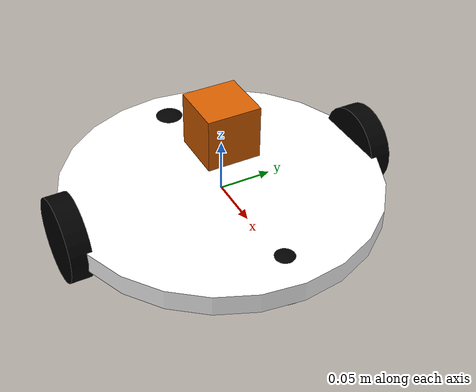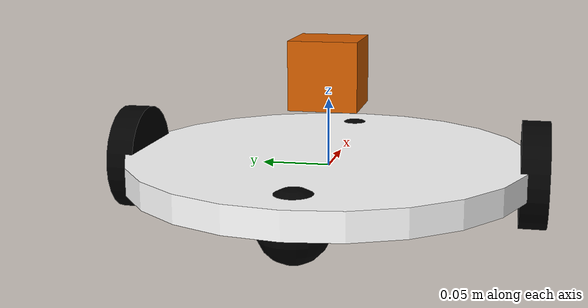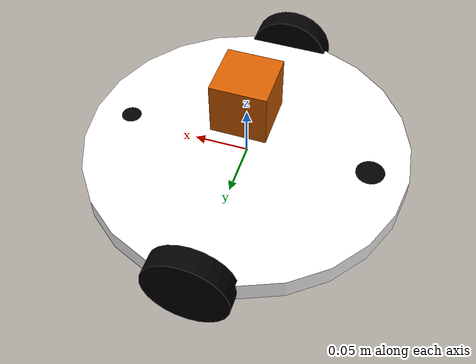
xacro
<?xml version="1.0"?>
<robot name="diff_robot" xmlns:xacro="http://ros.org/wiki/xacro">

  <xacro:include filename="$(find nav2_mobile_robot)/nav2_mobile_robot_macro.xacro" />

  <xacro:property name="base_radius" value="0.15" />
  <xacro:property name="passive_wheel_height" value="0.04" />
  <xacro:property name="passive_wheel_radius" value="0.025" />
  <xacro:property name="passive_wheel_mass" value="0.5" />
  <xacro:property name="wheel_radius" value="0.039" />
  <xacro:property name="wheel_height" value="0.02" />
  <xacro:property name="wheel_mass" value="2.5" />

  <link name="base_link">
    <inertial>
      <inertia ixx="1.0" ixy="0.0" ixz="0.0" iyy="1.0" iyz="0.0" izz="1.0"/>
      <mass value="5" />
      <origin xyz="0 0 0" />
      <xacro:cylinder_inertia m="5" r="${base_radius}" h="0.02" />
    </inertial>
    <visual>
      <origin xyz="0 0 0" rpy="0 0 0" />
      <geometry>
        <cylinder length="0.02" radius="${base_radius}" />
      </geometry>
      <material name="White" />
    </visual>
    <collision>
      <origin xyz="0 0 0" rpy="0 0 0 " />
      <geometry>
        <cylinder length="0.02" radius="${base_radius}" />
      </geometry>
    </collision>
  </link>

  <xacro:passive_wheel_joint name="passive_wheel_front_joint" parent="base_link" child="passive_wheel_front_link">
    <origin xyz="0.115 0.0 0.007" rpy="${-M_PI/2} 0 0"/>
  </xacro:passive_wheel_joint>

  <xacro:passive_wheel_link name="passive_wheel_front_link">
    <origin xyz="0 0.02 0" rpy="${M_PI/2} 0 0" />
  </xacro:passive_wheel_link>

  <xacro:passive_wheel_joint name="passive_wheel_back_joint" parent="base_link" child="passive_wheel_back_link">
    <origin xyz="-0.135 0.0 0.009" rpy="${-M_PI/2} 0 0"/>
  </xacro:passive_wheel_joint>

  <xacro:passive_wheel_link name="passive_wheel_back_link">
    <origin xyz="0.02 0.02 0 " rpy="${M_PI/2} 0 0" />
  </xacro:passive_wheel_link>

  <xacro:wheel side="right" parent="base_link" translateX="0" translateY="-${base_radius}"/>
  <xacro:wheel side="left" parent="base_link" translateX="0" translateY="${base_radius}" />

  <link name="lidar_link">
    <visual>
      <origin xyz="0 0 0.035" rpy="0 0 0"/>
      <geometry>
        <box size="0.05 0.05 0.05" />
      </geometry>
    </visual>
    <collision>
      <origin xyz="0 0 0.035" rpy="0 0 0"/>
      <geometry>
        <box size="0.05 0.05 0.05" />
      </geometry>
    </collision>
    <inertial>
      <origin xyz="0 0 0.035" rpy="0 0 0"/>
      <mass value="1"/>
      <inertia ixx="1.0" ixy="0.0" ixz="0.0" iyy="1.0" iyz="0.0" izz="1.0"/>
    </inertial>
  </link>

  <joint name='lidar_sensor_joint' type='fixed'>
    <parent link="base_link"/>
    <child link="lidar_link"/>
    <origin xyz="0 0 0.035" rpy="0 0 0"/>
  </joint>

  <gazebo reference="lidar_link">
    <sensor name="lidar" type='gpu_lidar'>
      <pose>0 0 0.035 0 0 0</pose>
      <topic>/scan</topic>
      <update_rate>10</update_rate>
      <ray>
        <scan>
          <horizontal>
            <samples>640</samples>
            <resolution>1</resolution>
            <min_angle>-1.396263</min_angle>
            <max_angle>1.396263</max_angle>
          </horizontal>
          <vertical>
            <samples>1</samples>
            <resolution>1</resolution>
            <min_angle>0</min_angle>
            <max_angle>0</max_angle>
          </vertical>
        </scan>
        <range>
          <min>0.1</min>
          <max>10.0</max>
          <resolution>0.01</resolution>
        </range>
      </ray>
      <always_on>1</always_on>
      <visualize>true</visualize>
      <gz_frame_id>lidar_link</gz_frame_id>
    </sensor>
  </gazebo>

  <gazebo>
    <plugin filename="gz-sim-diff-drive-system" name="gz::sim::systems::DiffDrive">
      <left_joint>left_wheel_joint</left_joint>
      <right_joint>right_wheel_joint</right_joint>
      <wheel_separation>${2*base_radius}</wheel_separation>
      <wheel_radius>${wheel_radius}</wheel_radius>
      <odom_publish_frequency>10</odom_publish_frequency>

      <topic>cmd_vel</topic>
      <odom_topic>model/diff_drive/odometry</odom_topic>
      <tf_topic>odom/tf</tf_topic>

      <frame_id>odom</frame_id>
      <child_frame_id>base_link</child_frame_id>
    </plugin>

    <plugin filename="gz-sim-joint-state-publisher-system" name="gz::sim::systems::JointStatePublisher">
      <topic>joint_states</topic>
      <joint_name>left_wheel_joint</joint_name>
      <joint_name>right_wheel_joint</joint_name>
    </plugin>
  </gazebo>

</robot>

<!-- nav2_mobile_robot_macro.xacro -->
<robot name="diff_robot"
xmlns:xacro="http://www.ros.org/wiki/xacro">

<xacro:property name="M_PI" value="3.1415926535897931" />
<material name="Black">
<color rgba="0.0 0.0 0.0 1.0"/>
</material>
<material name="White">
<color rgba="1.0 1.0 1.0 1.0"/>
</material>

<xacro:macro name="cylinder_inertia" params="m r h">
<inertia ixx="${m*(3*r*r+h*h)/12}" ixy = "0" ixz = "0"
iyy="${m*(3*r*r+h*h)/12}" iyz = "0"
izz="${m*r*r/2}" />
</xacro:macro>

'Caster Wheel'

<xacro:macro name="passive_wheel_joint" params="name parent child
*origin">

<joint name="${name}" type="fixed" >
<parent link="${parent}" />
<child link="${child}" />
<xacro:insert_block name="origin" />
</joint>
</xacro:macro>

<xacro:macro name="passive_wheel_link" params="name *origin">
<link name="${name}">
<visual>
<xacro:insert_block name="origin" />
<geometry>
<sphere radius="${passive_wheel_radius}" />
</geometry>
<material name="Black" />
</visual>
<collision>
<geometry>
<sphere radius="${passive_wheel_radius}" />
</geometry>
<origin xyz="0 0.02 0" rpy="${M_PI/2} 0 0" />
</collision>
<inertial>
<mass value="${passive_wheel_mass}" />
<origin xyz="0 0 0" />
<inertia ixx="0.001" ixy="0.0" ixz="0.0"
iyy="0.001" iyz="0.0"
izz="0.001" />
</inertial>
</link>
</xacro:macro>

'Main Wheel'

<xacro:macro name="wheel" params="side parent translateX
translateY">
<link name="${side}_wheel">
<visual>
<origin xyz="0 0 0" rpy="${M_PI/2} 0 0 " />
<geometry>
<cylinder length="${wheel_height}" radius="${wheel_radius}" />
</geometry>
<material name="Black" />
</visual>
<collision>
<origin xyz="0 0 0" rpy="${M_PI/2} 0 0 " />
<geometry>
<cylinder length="${wheel_height}" radius="${wheel_radius}" />
</geometry>
</collision>
<inertial>
<mass value="${wheel_mass}" />
<origin xyz="0 0 0" />
<inertia ixx="0.001" ixy="0.0" ixz="0.0"
iyy="0.001" iyz="0.0"
izz="0.001" />
</inertial>
</link>

<joint name="${side}_wheel_joint" type="continuous">
  <parent link="${parent}"/>
  <child link="${side}_wheel"/>
  <origin xyz="${translateX} ${translateY} 0" rpy="0 0 0" />
  <axis xyz="0 1 0" />
  <limit effort="100" velocity="100"/>
  <dynamics damping="0.0" friction="0.0"/>
</joint>
</xacro:macro>

</robot>
